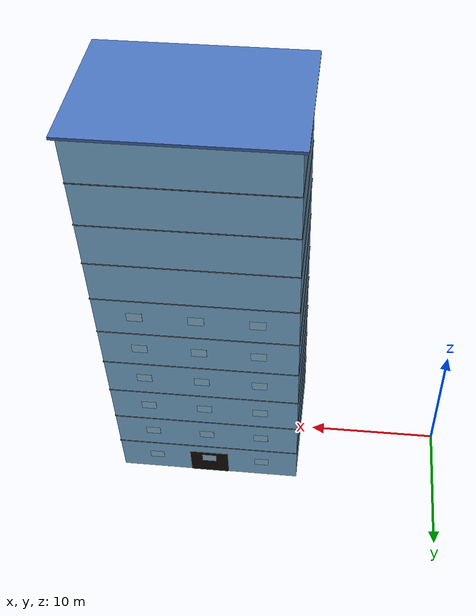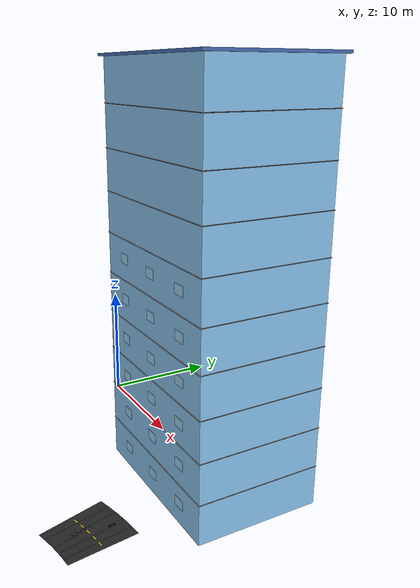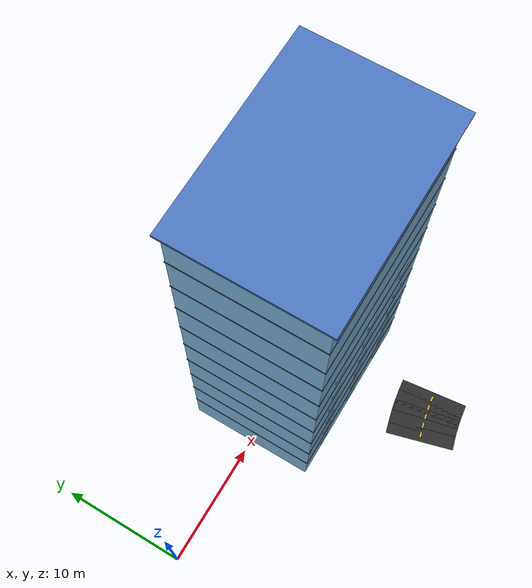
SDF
<sdf version="1.7">
 <world name="campus_delivery">
  <model name="campus_roads">
   <static>true</static>
   <link name="campus_main_trunk_0023">
    <pose>18.469 -11.467 0.002 0 0 0.272363</pose>
    <visual name="visual">
     <geometry><box><size>1.149 5.500 0.004</size></box></geometry>
     <material><ambient>0.160 0.160 0.160 1.000</ambient><diffuse>0.160 0.160 0.160 1.000</diffuse></material>
    </visual>
    <visual name="center_line">
     <pose>0 0 0.008 0 0 0</pose>
     <geometry><box><size>0.439 0.120 0.012</size></box></geometry>
     <material><ambient>0.950 0.780 0.080 1.000</ambient><diffuse>0.950 0.780 0.080 1.000</diffuse></material>
    </visual>
   </link>
   <link name="campus_main_trunk_0024">
    <pose>19.241 -11.267 0.002 0 0 0.234019</pose>
    <visual name="visual">
     <geometry><box><size>1.147 5.500 0.004</size></box></geometry>
     <material><ambient>0.160 0.160 0.160 1.000</ambient><diffuse>0.160 0.160 0.160 1.000</diffuse></material>
    </visual>
    <visual name="center_line">
     <pose>0 0 0.008 0 0 0</pose>
     <geometry><box><size>0.438 0.120 0.012</size></box></geometry>
     <material><ambient>0.950 0.780 0.080 1.000</ambient><diffuse>0.950 0.780 0.080 1.000</diffuse></material>
    </visual>
   </link>
   <link name="campus_main_trunk_0025">
    <pose>20.019 -11.098 0.002 0 0 0.195563</pose>
    <visual name="visual">
     <geometry><box><size>1.146 5.500 0.004</size></box></geometry>
     <material><ambient>0.160 0.160 0.160 1.000</ambient><diffuse>0.160 0.160 0.160 1.000</diffuse></material>
    </visual>
    <visual name="center_line">
     <pose>0 0 0.008 0 0 0</pose>
     <geometry><box><size>0.438 0.120 0.012</size></box></geometry>
     <material><ambient>0.950 0.780 0.080 1.000</ambient><diffuse>0.950 0.780 0.080 1.000</diffuse></material>
    </visual>
   </link>
   <link name="campus_main_trunk_0026">
    <pose>20.803 -10.958 0.002 0 0 0.157106</pose>
    <visual name="visual">
     <geometry><box><size>1.147 5.500 0.004</size></box></geometry>
     <material><ambient>0.160 0.160 0.160 1.000</ambient><diffuse>0.160 0.160 0.160 1.000</diffuse></material>
    </visual>
    <visual name="center_line">
     <pose>0 0 0.008 0 0 0</pose>
     <geometry><box><size>0.438 0.120 0.012</size></box></geometry>
     <material><ambient>0.950 0.780 0.080 1.000</ambient><diffuse>0.950 0.780 0.080 1.000</diffuse></material>
    </visual>
   </link>
   <link name="campus_main_trunk_0027">
    <pose>21.594 -10.848 0.002 0 0 0.118763</pose>
    <visual name="visual">
     <geometry><box><size>1.149 5.500 0.004</size></box></geometry>
     <material><ambient>0.160 0.160 0.160 1.000</ambient><diffuse>0.160 0.160 0.160 1.000</diffuse></material>
    </visual>
    <visual name="center_line">
     <pose>0 0 0.008 0 0 0</pose>
     <geometry><box><size>0.439 0.120 0.012</size></box></geometry>
     <material><ambient>0.950 0.780 0.080 1.000</ambient><diffuse>0.950 0.780 0.080 1.000</diffuse></material>
    </visual>
   </link>
  </model>
  <model name="dormitory_1">
   <static>true</static>
   <pose>18.000 0.000 0 0 0 0</pose>
   <link name="body">
    <visual name="body">
     <pose>0 0 16.000 0 0 0</pose>
     <geometry><box><size>14.000 10.000 32.000</size></box></geometry>
     <material><ambient>0.550 0.780 0.950 1.000</ambient><diffuse>0.550 0.780 0.950 1.000</diffuse></material>
    </visual>
    <collision name="body_collision">
     <pose>0 0 16.000 0 0 0</pose>
     <geometry><box><size>14.000 10.000 32.000</size></box></geometry>
    </collision>
    <visual name="roof">
     <pose>0 0 32.100 0 0 0</pose>
     <geometry><box><size>14.600 10.600 0.200</size></box></geometry>
     <material><ambient>0.280 0.440 0.720 1.000</ambient><diffuse>0.280 0.440 0.720 1.000</diffuse></material>
    </visual>
    <visual name="floor_sep_n_1">
     <pose>0 5.018 3.200 0 0 0</pose>
     <geometry><box><size>14.100 0.035 0.060</size></box></geometry>
     <material><ambient>0.080 0.080 0.080 1.000</ambient><diffuse>0.080 0.080 0.080 1.000</diffuse></material>
    </visual>
    <visual name="floor_sep_s_1">
     <pose>0 -5.018 3.200 0 0 0</pose>
     <geometry><box><size>14.100 0.035 0.060</size></box></geometry>
     <material><ambient>0.080 0.080 0.080 1.000</ambient><diffuse>0.080 0.080 0.080 1.000</diffuse></material>
    </visual>
    <visual name="floor_sep_e_1">
     <pose>7.018 0 3.200 0 0 0</pose>
     <geometry><box><size>0.035 10.100 0.060</size></box></geometry>
     <material><ambient>0.080 0.080 0.080 1.000</ambient><diffuse>0.080 0.080 0.080 1.000</diffuse></material>
    </visual>
    <visual name="floor_sep_w_1">
     <pose>-7.018 0 3.200 0 0 0</pose>
     <geometry><box><size>0.035 10.100 0.060</size></box></geometry>
     <material><ambient>0.080 0.080 0.080 1.000</ambient><diffuse>0.080 0.080 0.080 1.000</diffuse></material>
    </visual>
    <visual name="floor_sep_n_2">
     <pose>0 5.018 6.400 0 0 0</pose>
     <geometry><box><size>14.100 0.035 0.060</size></box></geometry>
     <material><ambient>0.080 0.080 0.080 1.000</ambient><diffuse>0.080 0.080 0.080 1.000</diffuse></material>
    </visual>
    <visual name="floor_sep_s_2">
     <pose>0 -5.018 6.400 0 0 0</pose>
     <geometry><box><size>14.100 0.035 0.060</size></box></geometry>
     <material><ambient>0.080 0.080 0.080 1.000</ambient><diffuse>0.080 0.080 0.080 1.000</diffuse></material>
    </visual>
    <visual name="floor_sep_e_2">
     <pose>7.018 0 6.400 0 0 0</pose>
     <geometry><box><size>0.035 10.100 0.060</size></box></geometry>
     <material><ambient>0.080 0.080 0.080 1.000</ambient><diffuse>0.080 0.080 0.080 1.000</diffuse></material>
    </visual>
    <visual name="floor_sep_w_2">
     <pose>-7.018 0 6.400 0 0 0</pose>
     <geometry><box><size>0.035 10.100 0.060</size></box></geometry>
     <material><ambient>0.080 0.080 0.080 1.000</ambient><diffuse>0.080 0.080 0.080 1.000</diffuse></material>
    </visual>
    <visual name="floor_sep_n_3">
     <pose>0 5.018 9.600 0 0 0</pose>
     <geometry><box><size>14.100 0.035 0.060</size></box></geometry>
     <material><ambient>0.080 0.080 0.080 1.000</ambient><diffuse>0.080 0.080 0.080 1.000</diffuse></material>
    </visual>
    <visual name="floor_sep_s_3">
     <pose>0 -5.018 9.600 0 0 0</pose>
     <geometry><box><size>14.100 0.035 0.060</size></box></geometry>
     <material><ambient>0.080 0.080 0.080 1.000</ambient><diffuse>0.080 0.080 0.080 1.000</diffuse></material>
    </visual>
    <visual name="floor_sep_e_3">
     <pose>7.018 0 9.600 0 0 0</pose>
     <geometry><box><size>0.035 10.100 0.060</size></box></geometry>
     <material><ambient>0.080 0.080 0.080 1.000</ambient><diffuse>0.080 0.080 0.080 1.000</diffuse></material>
    </visual>
    <visual name="floor_sep_w_3">
     <pose>-7.018 0 9.600 0 0 0</pose>
     <geometry><box><size>0.035 10.100 0.060</size></box></geometry>
     <material><ambient>0.080 0.080 0.080 1.000</ambient><diffuse>0.080 0.080 0.080 1.000</diffuse></material>
    </visual>
    <visual name="floor_sep_n_4">
     <pose>0 5.018 12.800 0 0 0</pose>
     <geometry><box><size>14.100 0.035 0.060</size></box></geometry>
     <material><ambient>0.080 0.080 0.080 1.000</ambient><diffuse>0.080 0.080 0.080 1.000</diffuse></material>
    </visual>
    <visual name="floor_sep_s_4">
     <pose>0 -5.018 12.800 0 0 0</pose>
     <geometry><box><size>14.100 0.035 0.060</size></box></geometry>
     <material><ambient>0.080 0.080 0.080 1.000</ambient><diffuse>0.080 0.080 0.080 1.000</diffuse></material>
    </visual>
    <visual name="floor_sep_e_4">
     <pose>7.018 0 12.800 0 0 0</pose>
     <geometry><box><size>0.035 10.100 0.060</size></box></geometry>
     <material><ambient>0.080 0.080 0.080 1.000</ambient><diffuse>0.080 0.080 0.080 1.000</diffuse></material>
    </visual>
    <visual name="floor_sep_w_4">
     <pose>-7.018 0 12.800 0 0 0</pose>
     <geometry><box><size>0.035 10.100 0.060</size></box></geometry>
     <material><ambient>0.080 0.080 0.080 1.000</ambient><diffuse>0.080 0.080 0.080 1.000</diffuse></material>
    </visual>
    <visual name="floor_sep_n_5">
     <pose>0 5.018 16.000 0 0 0</pose>
     <geometry><box><size>14.100 0.035 0.060</size></box></geometry>
     <material><ambient>0.080 0.080 0.080 1.000</ambient><diffuse>0.080 0.080 0.080 1.000</diffuse></material>
    </visual>
    <visual name="floor_sep_s_5">
     <pose>0 -5.018 16.000 0 0 0</pose>
     <geometry><box><size>14.100 0.035 0.060</size></box></geometry>
     <material><ambient>0.080 0.080 0.080 1.000</ambient><diffuse>0.080 0.080 0.080 1.000</diffuse></material>
    </visual>
    <visual name="floor_sep_e_5">
     <pose>7.018 0 16.000 0 0 0</pose>
     <geometry><box><size>0.035 10.100 0.060</size></box></geometry>
     <material><ambient>0.080 0.080 0.080 1.000</ambient><diffuse>0.080 0.080 0.080 1.000</diffuse></material>
    </visual>
    <visual name="floor_sep_w_5">
     <pose>-7.018 0 16.000 0 0 0</pose>
     <geometry><box><size>0.035 10.100 0.060</size></box></geometry>
     <material><ambient>0.080 0.080 0.080 1.000</ambient><diffuse>0.080 0.080 0.080 1.000</diffuse></material>
    </visual>
    <visual name="floor_sep_n_6">
     <pose>0 5.018 19.200 0 0 0</pose>
     <geometry><box><size>14.100 0.035 0.060</size></box></geometry>
     <material><ambient>0.080 0.080 0.080 1.000</ambient><diffuse>0.080 0.080 0.080 1.000</diffuse></material>
    </visual>
    <visual name="floor_sep_s_6">
     <pose>0 -5.018 19.200 0 0 0</pose>
     <geometry><box><size>14.100 0.035 0.060</size></box></geometry>
     <material><ambient>0.080 0.080 0.080 1.000</ambient><diffuse>0.080 0.080 0.080 1.000</diffuse></material>
    </visual>
    <visual name="floor_sep_e_6">
     <pose>7.018 0 19.200 0 0 0</pose>
     <geometry><box><size>0.035 10.100 0.060</size></box></geometry>
     <material><ambient>0.080 0.080 0.080 1.000</ambient><diffuse>0.080 0.080 0.080 1.000</diffuse></material>
    </visual>
    <visual name="floor_sep_w_6">
     <pose>-7.018 0 19.200 0 0 0</pose>
     <geometry><box><size>0.035 10.100 0.060</size></box></geometry>
     <material><ambient>0.080 0.080 0.080 1.000</ambient><diffuse>0.080 0.080 0.080 1.000</diffuse></material>
    </visual>
    <visual name="floor_sep_n_7">
     <pose>0 5.018 22.400 0 0 0</pose>
     <geometry><box><size>14.100 0.035 0.060</size></box></geometry>
     <material><ambient>0.080 0.080 0.080 1.000</ambient><diffuse>0.080 0.080 0.080 1.000</diffuse></material>
    </visual>
    <visual name="floor_sep_s_7">
     <pose>0 -5.018 22.400 0 0 0</pose>
     <geometry><box><size>14.100 0.035 0.060</size></box></geometry>
     <material><ambient>0.080 0.080 0.080 1.000</ambient><diffuse>0.080 0.080 0.080 1.000</diffuse></material>
    </visual>
    <visual name="floor_sep_e_7">
     <pose>7.018 0 22.400 0 0 0</pose>
     <geometry><box><size>0.035 10.100 0.060</size></box></geometry>
     <material><ambient>0.080 0.080 0.080 1.000</ambient><diffuse>0.080 0.080 0.080 1.000</diffuse></material>
    </visual>
    <visual name="floor_sep_w_7">
     <pose>-7.018 0 22.400 0 0 0</pose>
     <geometry><box><size>0.035 10.100 0.060</size></box></geometry>
     <material><ambient>0.080 0.080 0.080 1.000</ambient><diffuse>0.080 0.080 0.080 1.000</diffuse></material>
    </visual>
    <visual name="floor_sep_n_8">
     <pose>0 5.018 25.600 0 0 0</pose>
     <geometry><box><size>14.100 0.035 0.060</size></box></geometry>
     <material><ambient>0.080 0.080 0.080 1.000</ambient><diffuse>0.080 0.080 0.080 1.000</diffuse></material>
    </visual>
    <visual name="floor_sep_s_8">
     <pose>0 -5.018 25.600 0 0 0</pose>
     <geometry><box><size>14.100 0.035 0.060</size></box></geometry>
     <material><ambient>0.080 0.080 0.080 1.000</ambient><diffuse>0.080 0.080 0.080 1.000</diffuse></material>
    </visual>
    <visual name="floor_sep_e_8">
     <pose>7.018 0 25.600 0 0 0</pose>
     <geometry><box><size>0.035 10.100 0.060</size></box></geometry>
     <material><ambient>0.080 0.080 0.080 1.000</ambient><diffuse>0.080 0.080 0.080 1.000</diffuse></material>
    </visual>
    <visual name="floor_sep_w_8">
     <pose>-7.018 0 25.600 0 0 0</pose>
     <geometry><box><size>0.035 10.100 0.060</size></box></geometry>
     <material><ambient>0.080 0.080 0.080 1.000</ambient><diffuse>0.080 0.080 0.080 1.000</diffuse></material>
    </visual>
    <visual name="floor_sep_n_9">
     <pose>0 5.018 28.800 0 0 0</pose>
     <geometry><box><size>14.100 0.035 0.060</size></box></geometry>
     <material><ambient>0.080 0.080 0.080 1.000</ambient><diffuse>0.080 0.080 0.080 1.000</diffuse></material>
    </visual>
    <visual name="floor_sep_s_9">
     <pose>0 -5.018 28.800 0 0 0</pose>
     <geometry><box><size>14.100 0.035 0.060</size></box></geometry>
     <material><ambient>0.080 0.080 0.080 1.000</ambient><diffuse>0.080 0.080 0.080 1.000</diffuse></material>
    </visual>
    <visual name="floor_sep_e_9">
     <pose>7.018 0 28.800 0 0 0</pose>
     <geometry><box><size>0.035 10.100 0.060</size></box></geometry>
     <material><ambient>0.080 0.080 0.080 1.000</ambient><diffuse>0.080 0.080 0.080 1.000</diffuse></material>
    </visual>
    <visual name="floor_sep_w_9">
     <pose>-7.018 0 28.800 0 0 0</pose>
     <geometry><box><size>0.035 10.100 0.060</size></box></geometry>
     <material><ambient>0.080 0.080 0.080 1.000</ambient><diffuse>0.080 0.080 0.080 1.000</diffuse></material>
    </visual>
    <visual name="front_door">
     <pose>0 5.012 1.2 0 0 0</pose>
     <geometry><box><size>3.000 0.050 2.400</size></box></geometry>
     <material><ambient>0.080 0.060 0.040 1.000</ambient><diffuse>0.080 0.060 0.040 1.000</diffuse></material>
    </visual>
    <visual name="win_n_1_-4.2">
     <pose>-4.200 5.020 1.700 0 0 0</pose>
     <geometry><box><size>1.100 0.035 0.750</size></box></geometry>
     <material><ambient>0.620 0.820 0.950 1.000</ambient><diffuse>0.620 0.820 0.950 1.000</diffuse></material>
    </visual>
    <visual name="win_s_1_-4.2">
     <pose>-4.200 -5.020 1.700 0 0 0</pose>
     <geometry><box><size>1.100 0.035 0.750</size></box></geometry>
     <material><ambient>0.620 0.820 0.950 1.000</ambient><diffuse>0.620 0.820 0.950 1.000</diffuse></material>
    </visual>
    <visual name="win_n_1_0.0">
     <pose>0.000 5.020 1.700 0 0 0</pose>
     <geometry><box><size>1.100 0.035 0.750</size></box></geometry>
     <material><ambient>0.620 0.820 0.950 1.000</ambient><diffuse>0.620 0.820 0.950 1.000</diffuse></material>
    </visual>
    <visual name="win_s_1_0.0">
     <pose>0.000 -5.020 1.700 0 0 0</pose>
     <geometry><box><size>1.100 0.035 0.750</size></box></geometry>
     <material><ambient>0.620 0.820 0.950 1.000</ambient><diffuse>0.620 0.820 0.950 1.000</diffuse></material>
    </visual>
    <visual name="win_n_1_4.2">
     <pose>4.200 5.020 1.700 0 0 0</pose>
     <geometry><box><size>1.100 0.035 0.750</size></box></geometry>
     <material><ambient>0.620 0.820 0.950 1.000</ambient><diffuse>0.620 0.820 0.950 1.000</diffuse></material>
    </visual>
    <visual name="win_s_1_4.2">
     <pose>4.200 -5.020 1.700 0 0 0</pose>
     <geometry><box><size>1.100 0.035 0.750</size></box></geometry>
     <material><ambient>0.620 0.820 0.950 1.000</ambient><diffuse>0.620 0.820 0.950 1.000</diffuse></material>
    </visual>
    <visual name="win_n_2_-4.2">
     <pose>-4.200 5.020 4.900 0 0 0</pose>
     <geometry><box><size>1.100 0.035 0.750</size></box></geometry>
     <material><ambient>0.620 0.820 0.950 1.000</ambient><diffuse>0.620 0.820 0.950 1.000</diffuse></material>
    </visual>
    <visual name="win_s_2_-4.2">
     <pose>-4.200 -5.020 4.900 0 0 0</pose>
     <geometry><box><size>1.100 0.035 0.750</size></box></geometry>
     <material><ambient>0.620 0.820 0.950 1.000</ambient><diffuse>0.620 0.820 0.950 1.000</diffuse></material>
    </visual>
    <visual name="win_n_2_0.0">
     <pose>0.000 5.020 4.900 0 0 0</pose>
     <geometry><box><size>1.100 0.035 0.750</size></box></geometry>
     <material><ambient>0.620 0.820 0.950 1.000</ambient><diffuse>0.620 0.820 0.950 1.000</diffuse></material>
    </visual>
    <visual name="win_s_2_0.0">
     <pose>0.000 -5.020 4.900 0 0 0</pose>
     <geometry><box><size>1.100 0.035 0.750</size></box></geometry>
     <material><ambient>0.620 0.820 0.950 1.000</ambient><diffuse>0.620 0.820 0.950 1.000</diffuse></material>
    </visual>
    <visual name="win_n_2_4.2">
     <pose>4.200 5.020 4.900 0 0 0</pose>
     <geometry><box><size>1.100 0.035 0.750</size></box></geometry>
     <material><ambient>0.620 0.820 0.950 1.000</ambient><diffuse>0.620 0.820 0.950 1.000</diffuse></material>
    </visual>
    <visual name="win_s_2_4.2">
     <pose>4.200 -5.020 4.900 0 0 0</pose>
     <geometry><box><size>1.100 0.035 0.750</size></box></geometry>
     <material><ambient>0.620 0.820 0.950 1.000</ambient><diffuse>0.620 0.820 0.950 1.000</diffuse></material>
    </visual>
    <visual name="win_n_3_-4.2">
     <pose>-4.200 5.020 8.100 0 0 0</pose>
     <geometry><box><size>1.100 0.035 0.750</size></box></geometry>
     <material><ambient>0.620 0.820 0.950 1.000</ambient><diffuse>0.620 0.820 0.950 1.000</diffuse></material>
    </visual>
    <visual name="win_s_3_-4.2">
     <pose>-4.200 -5.020 8.100 0 0 0</pose>
     <geometry><box><size>1.100 0.035 0.750</size></box></geometry>
     <material><ambient>0.620 0.820 0.950 1.000</ambient><diffuse>0.620 0.820 0.950 1.000</diffuse></material>
    </visual>
    <visual name="win_n_3_0.0">
     <pose>0.000 5.020 8.100 0 0 0</pose>
     <geometry><box><size>1.100 0.035 0.750</size></box></geometry>
     <material><ambient>0.620 0.820 0.950 1.000</ambient><diffuse>0.620 0.820 0.950 1.000</diffuse></material>
    </visual>
    <visual name="win_s_3_0.0">
     <pose>0.000 -5.020 8.100 0 0 0</pose>
     <geometry><box><size>1.100 0.035 0.750</size></box></geometry>
     <material><ambient>0.620 0.820 0.950 1.000</ambient><diffuse>0.620 0.820 0.950 1.000</diffuse></material>
    </visual>
    <visual name="win_n_3_4.2">
     <pose>4.200 5.020 8.100 0 0 0</pose>
     <geometry><box><size>1.100 0.035 0.750</size></box></geometry>
     <material><ambient>0.620 0.820 0.950 1.000</ambient><diffuse>0.620 0.820 0.950 1.000</diffuse></material>
    </visual>
    <visual name="win_s_3_4.2">
     <pose>4.200 -5.020 8.100 0 0 0</pose>
     <geometry><box><size>1.100 0.035 0.750</size></box></geometry>
     <material><ambient>0.620 0.820 0.950 1.000</ambient><diffuse>0.620 0.820 0.950 1.000</diffuse></material>
    </visual>
    <visual name="win_n_4_-4.2">
     <pose>-4.200 5.020 11.300 0 0 0</pose>
     <geometry><box><size>1.100 0.035 0.750</size></box></geometry>
     <material><ambient>0.620 0.820 0.950 1.000</ambient><diffuse>0.620 0.820 0.950 1.000</diffuse></material>
    </visual>
    <visual name="win_s_4_-4.2">
     <pose>-4.200 -5.020 11.300 0 0 0</pose>
     <geometry><box><size>1.100 0.035 0.750</size></box></geometry>
     <material><ambient>0.620 0.820 0.950 1.000</ambient><diffuse>0.620 0.820 0.950 1.000</diffuse></material>
    </visual>
    <visual name="win_n_4_0.0">
     <pose>0.000 5.020 11.300 0 0 0</pose>
     <geometry><box><size>1.100 0.035 0.750</size></box></geometry>
     <material><ambient>0.620 0.820 0.950 1.000</ambient><diffuse>0.620 0.820 0.950 1.000</diffuse></material>
    </visual>
    <visual name="win_s_4_0.0">
     <pose>0.000 -5.020 11.300 0 0 0</pose>
     <geometry><box><size>1.100 0.035 0.750</size></box></geometry>
     <material><ambient>0.620 0.820 0.950 1.000</ambient><diffuse>0.620 0.820 0.950 1.000</diffuse></material>
    </visual>
    <visual name="win_n_4_4.2">
     <pose>4.200 5.020 11.300 0 0 0</pose>
     <geometry><box><size>1.100 0.035 0.750</size></box></geometry>
     <material><ambient>0.620 0.820 0.950 1.000</ambient><diffuse>0.620 0.820 0.950 1.000</diffuse></material>
    </visual>
    <visual name="win_s_4_4.2">
     <pose>4.200 -5.020 11.300 0 0 0</pose>
     <geometry><box><size>1.100 0.035 0.750</size></box></geometry>
     <material><ambient>0.620 0.820 0.950 1.000</ambient><diffuse>0.620 0.820 0.950 1.000</diffuse></material>
    </visual>
    <visual name="win_n_5_-4.2">
     <pose>-4.200 5.020 14.500 0 0 0</pose>
     <geometry><box><size>1.100 0.035 0.750</size></box></geometry>
     <material><ambient>0.620 0.820 0.950 1.000</ambient><diffuse>0.620 0.820 0.950 1.000</diffuse></material>
    </visual>
    <visual name="win_s_5_-4.2">
     <pose>-4.200 -5.020 14.500 0 0 0</pose>
     <geometry><box><size>1.100 0.035 0.750</size></box></geometry>
     <material><ambient>0.620 0.820 0.950 1.000</ambient><diffuse>0.620 0.820 0.950 1.000</diffuse></material>
    </visual>
    <visual name="win_n_5_0.0">
     <pose>0.000 5.020 14.500 0 0 0</pose>
     <geometry><box><size>1.100 0.035 0.750</size></box></geometry>
     <material><ambient>0.620 0.820 0.950 1.000</ambient><diffuse>0.620 0.820 0.950 1.000</diffuse></material>
    </visual>
    <visual name="win_s_5_0.0">
     <pose>0.000 -5.020 14.500 0 0 0</pose>
     <geometry><box><size>1.100 0.035 0.750</size></box></geometry>
     <material><ambient>0.620 0.820 0.950 1.000</ambient><diffuse>0.620 0.820 0.950 1.000</diffuse></material>
    </visual>
    <visual name="win_n_5_4.2">
     <pose>4.200 5.020 14.500 0 0 0</pose>
     <geometry><box><size>1.100 0.035 0.750</size></box></geometry>
     <material><ambient>0.620 0.820 0.950 1.000</ambient><diffuse>0.620 0.820 0.950 1.000</diffuse></material>
    </visual>
    <visual name="win_s_5_4.2">
     <pose>4.200 -5.020 14.500 0 0 0</pose>
     <geometry><box><size>1.100 0.035 0.750</size></box></geometry>
     <material><ambient>0.620 0.820 0.950 1.000</ambient><diffuse>0.620 0.820 0.950 1.000</diffuse></material>
    </visual>
    <visual name="win_n_6_-4.2">
     <pose>-4.200 5.020 17.700 0 0 0</pose>
     <geometry><box><size>1.100 0.035 0.750</size></box></geometry>
     <material><ambient>0.620 0.820 0.950 1.000</ambient><diffuse>0.620 0.820 0.950 1.000</diffuse></material>
    </visual>
    <visual name="win_s_6_-4.2">
     <pose>-4.200 -5.020 17.700 0 0 0</pose>
     <geometry><box><size>1.100 0.035 0.750</size></box></geometry>
     <material><ambient>0.620 0.820 0.950 1.000</ambient><diffuse>0.620 0.820 0.950 1.000</diffuse></material>
    </visual>
    <visual name="win_n_6_0.0">
     <pose>0.000 5.020 17.700 0 0 0</pose>
     <geometry><box><size>1.100 0.035 0.750</size></box></geometry>
     <material><ambient>0.620 0.820 0.950 1.000</ambient><diffuse>0.620 0.820 0.950 1.000</diffuse></material>
    </visual>
    <visual name="win_s_6_0.0">
     <pose>0.000 -5.020 17.700 0 0 0</pose>
     <geometry><box><size>1.100 0.035 0.750</size></box></geometry>
     <material><ambient>0.620 0.820 0.950 1.000</ambient><diffuse>0.620 0.820 0.950 1.000</diffuse></material>
    </visual>
    <visual name="win_n_6_4.2">
     <pose>4.200 5.020 17.700 0 0 0</pose>
     <geometry><box><size>1.100 0.035 0.750</size></box></geometry>
     <material><ambient>0.620 0.820 0.950 1.000</ambient><diffuse>0.620 0.820 0.950 1.000</diffuse></material>
    </visual>
    <visual name="win_s_6_4.2">
     <pose>4.200 -5.020 17.700 0 0 0</pose>
     <geometry><box><size>1.100 0.035 0.750</size></box></geometry>
     <material><ambient>0.620 0.820 0.950 1.000</ambient><diffuse>0.620 0.820 0.950 1.000</diffuse></material>
    </visual>
   </link>
  </model>
 </world>
</sdf>
